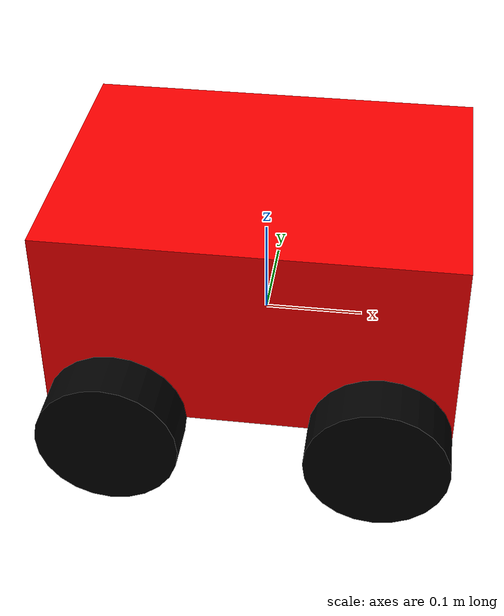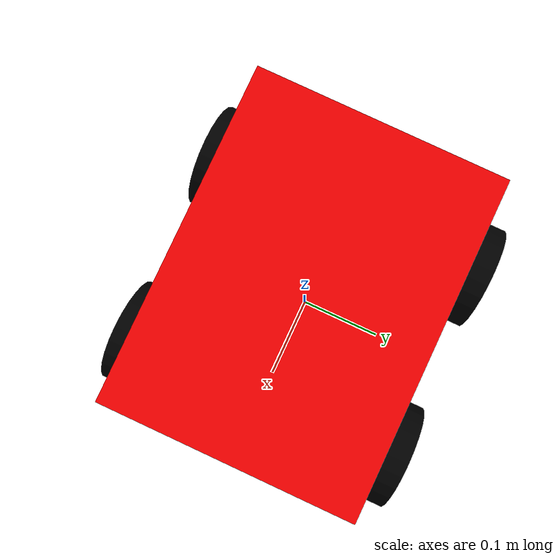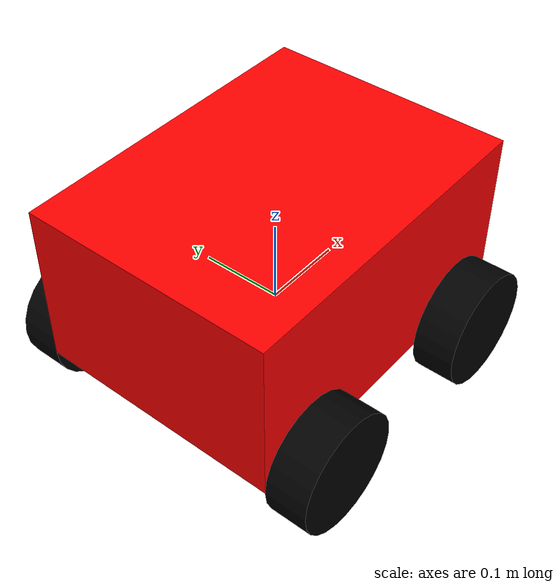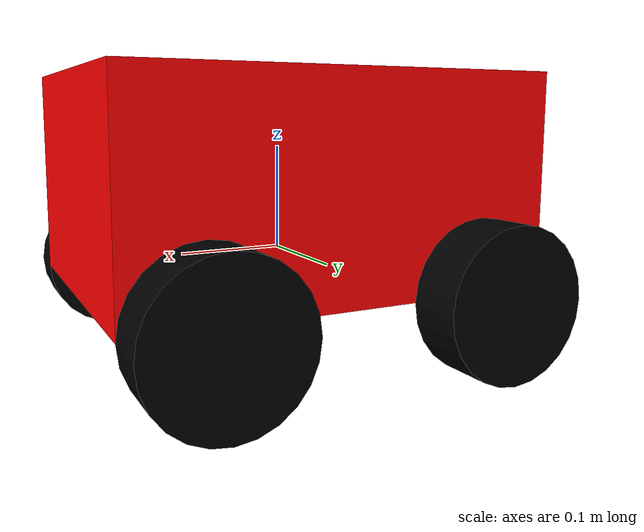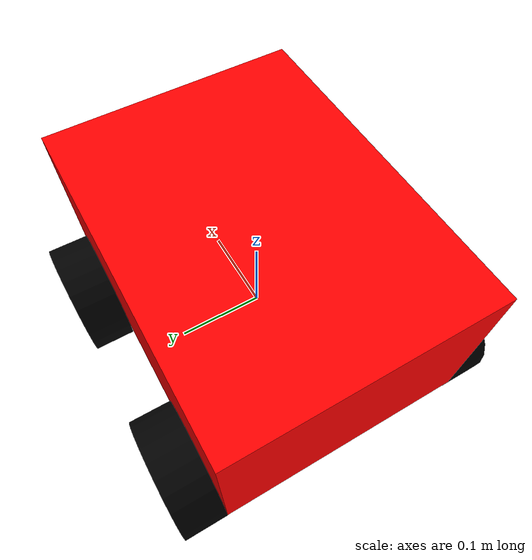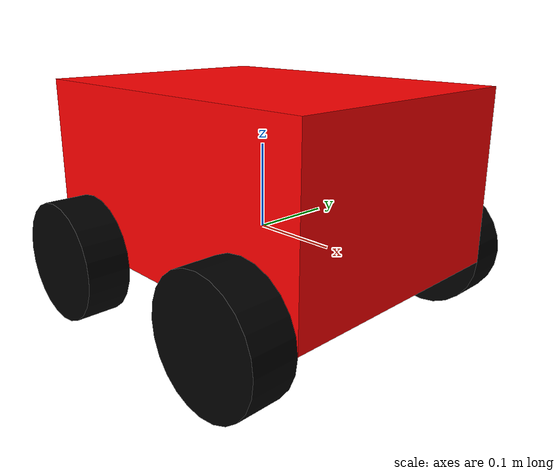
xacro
<?xml version="1.0"?>
<robot xmlns:xacro="http://www.ros.org/wiki/xacro"  name="robot">
    <xacro:property name="chassis_length" value = "0.4"></xacro:property>
    <xacro:property name="chassis_width" value = "0.3"></xacro:property>
    <xacro:property name="chassis_height" value = "0.2"></xacro:property>
    <xacro:property name="chassis_mass" value = "10"></xacro:property>
    <xacro:property name="wheel_rad" value = "0.07"></xacro:property>
    <xacro:property name="wheel_width" value = "0.05"></xacro:property>

    <link name="base_link">

    </link>

    <link name="chassis">
        <visual name="">
            <origin xyz="0.0 0.0 0.0" rpy="0.0 0.0 0.0"/>
            <geometry>
                <box size="${chassis_length} ${chassis_width} ${chassis_height}"/>
            </geometry>
            <material name="">
                <color rgba="1.0 0.0 0.0 1.0"/>
                <texture filename=""/>
            </material>
        </visual>
        <collision>
            <origin xyz="0.0 0.0 0.0" rpy="0.0 0.0 0.0"/>
            <geometry>
                <box size="${chassis_length} ${chassis_width} ${chassis_height}"/>
            </geometry>
        </collision>
    </link>

    <link name="back_left_wheel">
        <visual name="">
            <origin xyz="0.0 0.0 0.0" rpy="0.0 0.0 0.0"/>
            <geometry>
                <cylinder radius="${wheel_rad}" length="${wheel_width}"/>
            </geometry>
            <material name="">
                <color rgba="0.0 0.0 0.0 1.0"/>
                <texture filename=""/>
            </material>
        </visual>
        <collision>
            <origin xyz="0.0 0.0 0.0" rpy="0.0 0.0 0.0"/>
            <geometry>
                <cylinder radius="${wheel_rad}" length="${wheel_width}"/>
            </geometry>
        </collision>
    </link>

    <link name="front_left_wheel">
        <visual name="">
            <origin xyz="0.0 0.0 0.0" rpy="0.0 0.0 0.0"/>
            <geometry>
                <cylinder radius="${wheel_rad}" length="${wheel_width}"/>
            </geometry>
            <material name="">
                <color rgba="0.0 0.0 0.0 1.0"/>
                <texture filename=""/>
            </material>
        </visual>
        <collision>
            <origin xyz="0.0 0.0 0.0" rpy="0.0 0.0 0.0"/>
            <geometry>
                <cylinder radius="${wheel_rad}" length="${wheel_width}"/>
            </geometry>
        </collision>
    </link>

    <link name="back_right_wheel">
        <visual name="">
            <origin xyz="0.0 0.0 0.0" rpy="0.0 0.0 0.0"/>
            <geometry>
                <cylinder radius="${wheel_rad}" length="${wheel_width}"/>
            </geometry>
            <material name="">
                <color rgba="0.0 0.0 0.0 1.0"/>
                <texture filename=""/>
            </material>
        </visual>
        <collision>
            <origin xyz="0.0 0.0 0.0" rpy="0.0 0.0 0.0"/>
            <geometry>
                <cylinder radius="${wheel_rad}" length="${wheel_width}"/>
            </geometry>
        </collision>
    </link>

    <link name="front_right_wheel">
        <visual name="">
            <origin xyz="0.0 0.0 0.0" rpy="0.0 0.0 0.0"/>
            <geometry>
                <cylinder radius="${wheel_rad}" length="${wheel_width}"/>
            </geometry>
            <material name="">
                <color rgba="0.0 0.0 0.0 1.0"/>
                <texture filename=""/>
            </material>
        </visual>
        <collision>
            <origin xyz="0.0 0.0 0.0" rpy="0.0 0.0 0.0"/>
            <geometry>
                <cylinder radius="${wheel_rad}" length="${wheel_width}"/>
            </geometry>
        </collision>
    </link>

    <joint name="baselink_chassis" type="fixed">
        <origin xyz="0.0 0.0 ${wheel_rad}" rpy="0.0 0.0 0.0"/>
        <parent link="base_link"/>
        <child link="chassis"/>
    </joint>

    <joint name="back_left_wheel_joint" type="continuous">
        <origin xyz="-${chassis_length/2 - wheel_rad} ${chassis_width/2 + wheel_width/2} -${chassis_height/2}" rpy="${pi/2} 0.0 0.0"/>
        <parent link="chassis"/>
        <child link="back_left_wheel"/>
        <axis xyz="0.0 0.0 -1.0"/>
        <limit lower="0.0" upper="0.0" effort="0.0" velocity="0.0"/>
    </joint>

    <joint name="front_left_wheel_joint" type="continuous">
        <origin xyz="${chassis_length/2 - wheel_rad} ${chassis_width/2 + wheel_width/2} -${chassis_height/2}" rpy="${pi/2} 0.0 0.0"/>
        <parent link="chassis"/>
        <child link="front_left_wheel"/>
        <axis xyz="0.0 0.0 -1.0"/>
        <limit lower="0.0" upper="0.0" effort="0.0" velocity="0.0"/>
    </joint>

    <joint name="back_right_wheel_joint" type="continuous">
        <origin xyz="-${chassis_length/2 - wheel_rad} -${chassis_width/2 + wheel_width/2} -${chassis_height/2}" rpy="${pi/2} 0.0 0.0"/>
        <parent link="chassis"/>
        <child link="back_right_wheel"/>
        <axis xyz="0.0 0.0 -1.0"/>
        <limit lower="0.0" upper="0.0" effort="0.0" velocity="0.0"/>
    </joint>

    <joint name="front_right_wheel_joint" type="continuous">
        <origin xyz="${chassis_length/2 - wheel_rad} -${chassis_width/2 + wheel_width/2} -${chassis_height/2}" rpy="${pi/2} 0.0 0.0"/>
        <parent link="chassis"/>
        <child link="front_right_wheel"/>
        <axis xyz="0.0 0.0 -1.0"/>
        <limit lower="0.0" upper="0.0" effort="0.0" velocity="0.0"/>
    </joint>

</robot>
